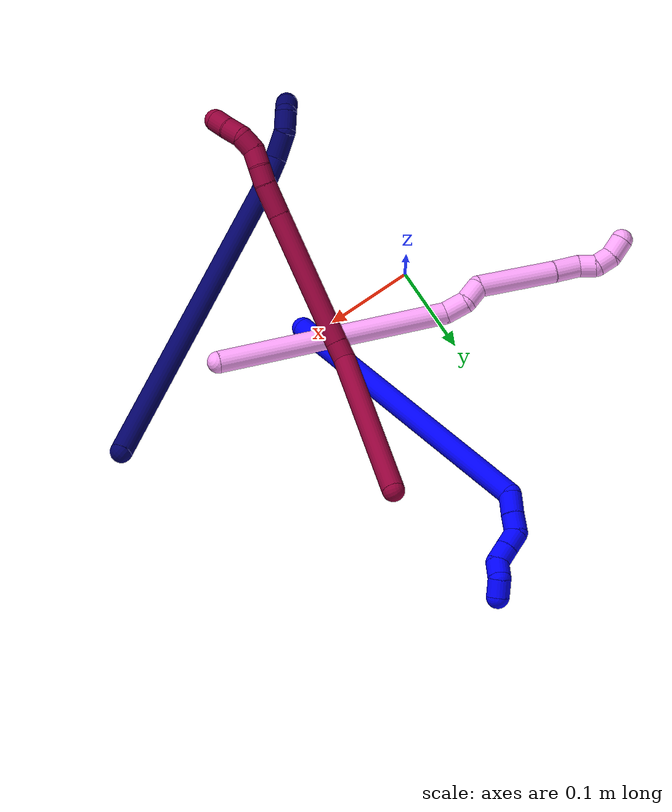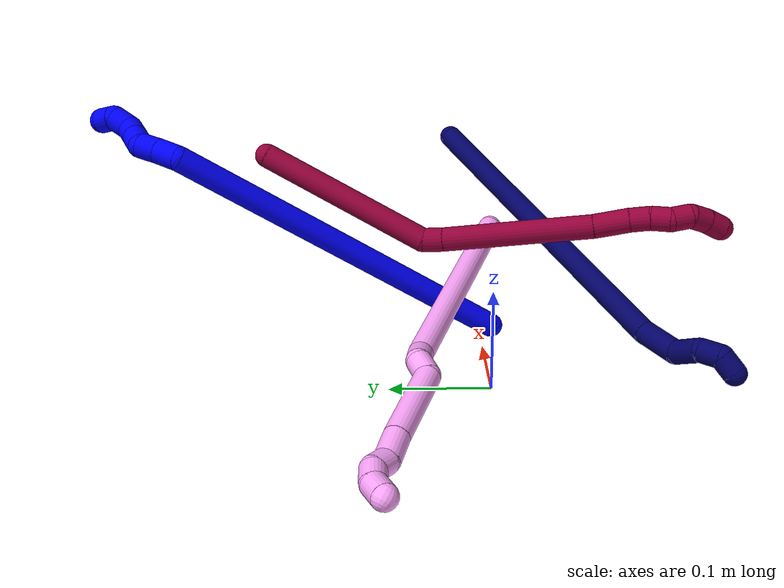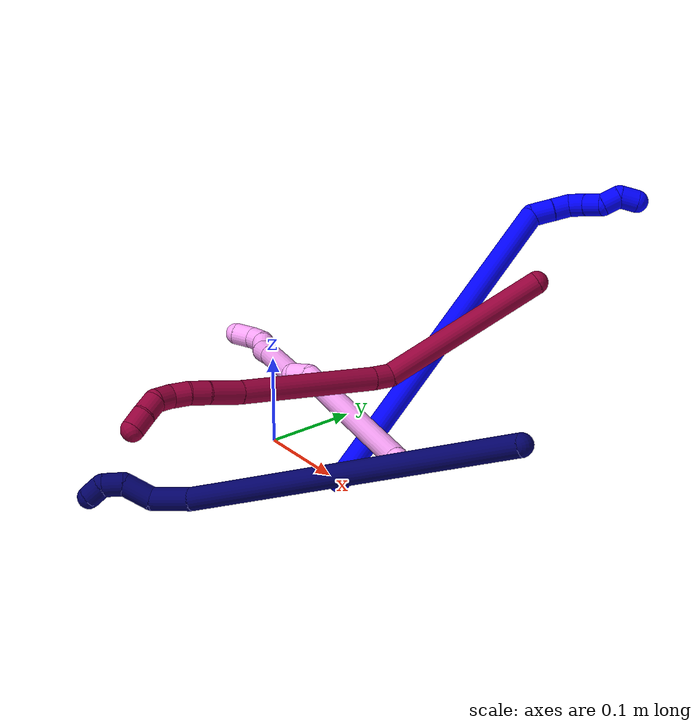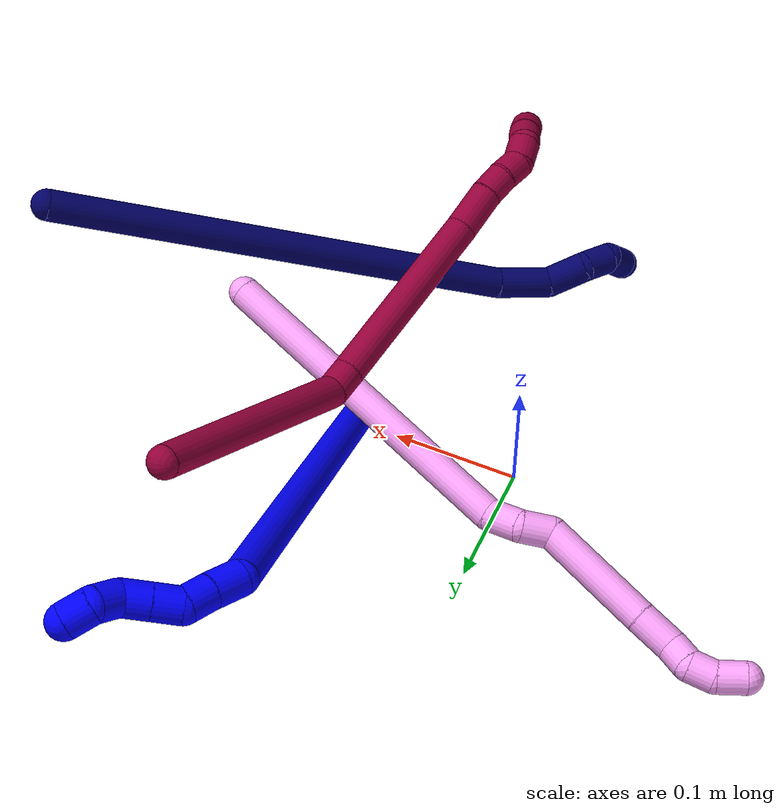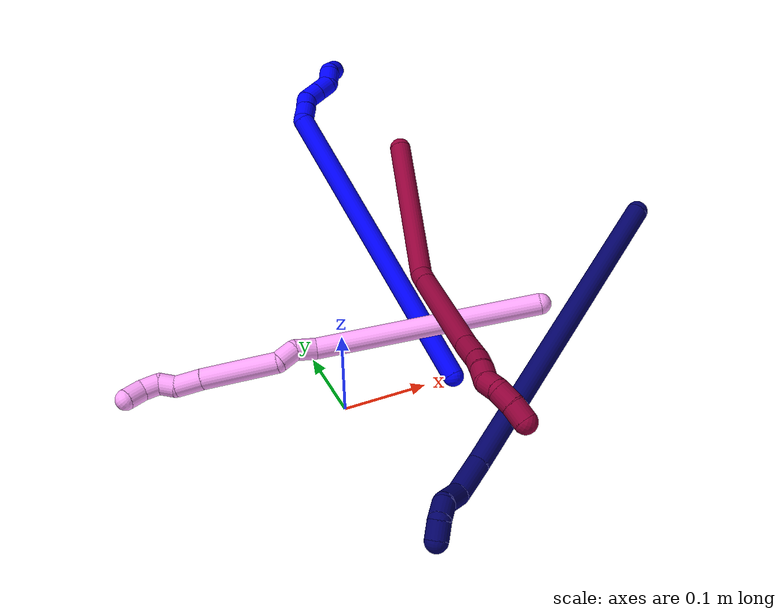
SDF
<sdf version="1.7">
 <world name="default">
  <model name="1">
   <static>0</static>
   <link name="1">
    <collision name="collision-cylinder-e_1_1_4">
     <pose>-0.029122 0.071616 0.17114 -0.396321 -0.155703 0.031325</pose>
     <geometry><cylinder><radius>0.0125</radius><length>0.375584</length></cylinder></geometry>
     <surface>
      <friction><ode><mu>1.16</mu><mu2>1.16</mu2><slip1>0</slip1><slip2>0</slip2></ode></friction>
      <contact><ode><kp>1e+06</kp><kd>1</kd><max_vel>0</max_vel><min_depth>0.001</min_depth></ode></contact>
     </surface>
    </collision>
    <visual name="visual-cylinder-e_1_1_4">
     <pose>-0.029122 0.071616 0.17114 -0.396321 -0.155703 0.031325</pose>
     <geometry><cylinder><radius>0.0125</radius><length>0.375584</length></cylinder></geometry>
     <material><ambient>0 0 1 1</ambient></material>
    </visual>
    <collision name="collision-cylinder-e_2_4_5">
     <pose>-0.051872 0.147866 0.35132 -0.473746 0.56021 -0.138666</pose>
     <geometry><cylinder><radius>0.0125</radius><length>0.023983</length></cylinder></geometry>
     <surface>
      <friction><ode><mu>1.16</mu><mu2>1.16</mu2><slip1>0</slip1><slip2>0</slip2></ode></friction>
      <contact><ode><kp>1e+06</kp><kd>1</kd><max_vel>0</max_vel><min_depth>0.001</min_depth></ode></contact>
     </surface>
    </collision>
    <visual name="visual-cylinder-e_2_4_5">
     <pose>-0.051872 0.147866 0.35132 -0.473746 0.56021 -0.138666</pose>
     <geometry><cylinder><radius>0.0125</radius><length>0.023983</length></cylinder></geometry>
     <material><ambient>0 0 1 1</ambient></material>
    </visual>
    <collision name="collision-cylinder-e_3_5_6">
     <pose>-0.040466 0.156999 0.367968 -0.533952 0.517734 -0.144601</pose>
     <geometry><cylinder><radius>0.0125</radius><length>0.020342</length></cylinder></geometry>
     <surface>
      <friction><ode><mu>1.16</mu><mu2>1.16</mu2><slip1>0</slip1><slip2>0</slip2></ode></friction>
      <contact><ode><kp>1e+06</kp><kd>1</kd><max_vel>0</max_vel><min_depth>0.001</min_depth></ode></contact>
     </surface>
    </collision>
    <visual name="visual-cylinder-e_3_5_6">
     <pose>-0.040466 0.156999 0.367968 -0.533952 0.517734 -0.144601</pose>
     <geometry><cylinder><radius>0.0125</radius><length>0.020342</length></cylinder></geometry>
     <material><ambient>0 0 1 1</ambient></material>
    </visual>
    <collision name="collision-cylinder-e_4_6_7">
     <pose>-0.027043 0.160234 0.380883 0.233717 0.994217 0.127213</pose>
     <geometry><cylinder><radius>0.0125</radius><length>0.020013</length></cylinder></geometry>
     <surface>
      <friction><ode><mu>1.16</mu><mu2>1.16</mu2><slip1>0</slip1><slip2>0</slip2></ode></friction>
      <contact><ode><kp>1e+06</kp><kd>1</kd><max_vel>0</max_vel><min_depth>0.001</min_depth></ode></contact>
     </surface>
    </collision>
    <visual name="visual-cylinder-e_4_6_7">
     <pose>-0.027043 0.160234 0.380883 0.233717 0.994217 0.127213</pose>
     <geometry><cylinder><radius>0.0125</radius><length>0.020013</length></cylinder></geometry>
     <material><ambient>0 0 1 1</ambient></material>
    </visual>
    <collision name="collision-cylinder-e_5_7_8">
     <pose>-0.01022 0.157763 0.391497 0.223665 0.99771 0.122215</pose>
     <geometry><cylinder><radius>0.0125</radius><length>0.020076</length></cylinder></geometry>
     <surface>
      <friction><ode><mu>1.16</mu><mu2>1.16</mu2><slip1>0</slip1><slip2>0</slip2></ode></friction>
      <contact><ode><kp>1e+06</kp><kd>1</kd><max_vel>0</max_vel><min_depth>0.001</min_depth></ode></contact>
     </surface>
    </collision>
    <visual name="visual-cylinder-e_5_7_8">
     <pose>-0.01022 0.157763 0.391497 0.223665 0.99771 0.122215</pose>
     <geometry><cylinder><radius>0.0125</radius><length>0.020076</length></cylinder></geometry>
     <material><ambient>0 0 1 1</ambient></material>
    </visual>
    <collision name="collision-cylinder-e_6_8_9">
     <pose>0.002382 0.158829 0.405605 -0.252726 0.429925 -0.05546</pose>
     <geometry><cylinder><radius>0.0125</radius><length>0.02</length></cylinder></geometry>
     <surface>
      <friction><ode><mu>1.16</mu><mu2>1.16</mu2><slip1>0</slip1><slip2>0</slip2></ode></friction>
      <contact><ode><kp>1e+06</kp><kd>1</kd><max_vel>0</max_vel><min_depth>0.001</min_depth></ode></contact>
     </surface>
    </collision>
    <visual name="visual-cylinder-e_6_8_9">
     <pose>0.002382 0.158829 0.405605 -0.252726 0.429925 -0.05546</pose>
     <geometry><cylinder><radius>0.0125</radius><length>0.02</length></cylinder></geometry>
     <material><ambient>0 0 1 1</ambient></material>
    </visual>
    <collision name="collision-cylinder-e_7_9_2">
     <pose>0.014505 0.166168 0.417732 -0.989965 0.919797 -0.522532</pose>
     <geometry><cylinder><radius>0.0125</radius><length>0.020001</length></cylinder></geometry>
     <surface>
      <friction><ode><mu>1.16</mu><mu2>1.16</mu2><slip1>0</slip1><slip2>0</slip2></ode></friction>
      <contact><ode><kp>1e+06</kp><kd>1</kd><max_vel>0</max_vel><min_depth>0.001</min_depth></ode></contact>
     </surface>
    </collision>
    <visual name="visual-cylinder-e_7_9_2">
     <pose>0.014505 0.166168 0.417732 -0.989965 0.919797 -0.522532</pose>
     <geometry><cylinder><radius>0.0125</radius><length>0.020001</length></cylinder></geometry>
     <material><ambient>0 0 1 1</ambient></material>
    </visual>
    <collision name="collision-sphere-2">
     <pose>0.02246 0.171234 0.421057 0 -0 0</pose>
     <geometry><sphere><radius>0.0125</radius></sphere></geometry>
     <surface>
      <friction><ode><mu>1.16</mu><mu2>1.16</mu2><slip1>0</slip1><slip2>0</slip2></ode></friction>
      <contact><ode><kp>1e+06</kp><kd>1</kd><max_vel>0</max_vel><min_depth>0.001</min_depth></ode></contact>
     </surface>
    </collision>
    <visual name="visual-sphere-2">
     <pose>0.02246 0.171234 0.421057 0 -0 0</pose>
     <geometry><sphere><radius>0.0125</radius></sphere></geometry>
     <material><ambient>0 0 1 1</ambient></material>
    </visual>
    <collision name="collision-sphere-9">
     <pose>0.00655 0.161102 0.414407 0 -0 0</pose>
     <geometry><sphere><radius>0.0125</radius></sphere></geometry>
     <surface>
      <friction><ode><mu>1.16</mu><mu2>1.16</mu2><slip1>0</slip1><slip2>0</slip2></ode></friction>
      <contact><ode><kp>1e+06</kp><kd>1</kd><max_vel>0</max_vel><min_depth>0.001</min_depth></ode></contact>
     </surface>
    </collision>
    <visual name="visual-sphere-9">
     <pose>0.00655 0.161102 0.414407 0 -0 0</pose>
     <geometry><sphere><radius>0.0125</radius></sphere></geometry>
     <material><ambient>0 0 1 1</ambient></material>
    </visual>
    <collision name="collision-sphere-4">
     <pose>-0.058244 0.143232 0.34228 0 -0 0</pose>
     <geometry><sphere><radius>0.0125</radius></sphere></geometry>
     <surface>
      <friction><ode><mu>1.16</mu><mu2>1.16</mu2><slip1>0</slip1><slip2>0</slip2></ode></friction>
      <contact><ode><kp>1e+06</kp><kd>1</kd><max_vel>0</max_vel><min_depth>0.001</min_depth></ode></contact>
     </surface>
    </collision>
    <visual name="visual-sphere-4">
     <pose>-0.058244 0.143232 0.34228 0 -0 0</pose>
     <geometry><sphere><radius>0.0125</radius></sphere></geometry>
     <material><ambient>0 0 1 1</ambient></material>
    </visual>
    <collision name="collision-sphere-1">
     <geometry><sphere><radius>0.0125</radius></sphere></geometry>
     <surface>
      <friction><ode><mu>1.16</mu><mu2>1.16</mu2><slip1>0</slip1><slip2>0</slip2></ode></friction>
      <contact><ode><kp>1e+06</kp><kd>1</kd><max_vel>0</max_vel><min_depth>0.001</min_depth></ode></contact>
     </surface>
    </collision>
    <visual name="visual-sphere-1">
     <geometry><sphere><radius>0.0125</radius></sphere></geometry>
     <material><ambient>0 0 1 1</ambient></material>
    </visual>
    <collision name="collision-sphere-8">
     <pose>-0.001786 0.156556 0.396804 0 -0 0</pose>
     <geometry><sphere><radius>0.0125</radius></sphere></geometry>
     <surface>
      <friction><ode><mu>1.16</mu><mu2>1.16</mu2><slip1>0</slip1><slip2>0</slip2></ode></friction>
      <contact><ode><kp>1e+06</kp><kd>1</kd><max_vel>0</max_vel><min_depth>0.001</min_depth></ode></contact>
     </surface>
    </collision>
    <visual name="visual-sphere-8">
     <pose>-0.001786 0.156556 0.396804 0 -0 0</pose>
     <geometry><sphere><radius>0.0125</radius></sphere></geometry>
     <material><ambient>0 0 1 1</ambient></material>
    </visual>
    <collision name="collision-sphere-5">
     <pose>-0.0455 0.152501 0.36036 0 -0 0</pose>
     <geometry><sphere><radius>0.0125</radius></sphere></geometry>
     <surface>
      <friction><ode><mu>1.16</mu><mu2>1.16</mu2><slip1>0</slip1><slip2>0</slip2></ode></friction>
      <contact><ode><kp>1e+06</kp><kd>1</kd><max_vel>0</max_vel><min_depth>0.001</min_depth></ode></contact>
     </surface>
    </collision>
    <visual name="visual-sphere-5">
     <pose>-0.0455 0.152501 0.36036 0 -0 0</pose>
     <geometry><sphere><radius>0.0125</radius></sphere></geometry>
     <material><ambient>0 0 1 1</ambient></material>
    </visual>
    <collision name="collision-sphere-6">
     <pose>-0.035432 0.161497 0.375576 0 -0 0</pose>
     <geometry><sphere><radius>0.0125</radius></sphere></geometry>
     <surface>
      <friction><ode><mu>1.16</mu><mu2>1.16</mu2><slip1>0</slip1><slip2>0</slip2></ode></friction>
      <contact><ode><kp>1e+06</kp><kd>1</kd><max_vel>0</max_vel><min_depth>0.001</min_depth></ode></contact>
     </surface>
    </collision>
    <visual name="visual-sphere-6">
     <pose>-0.035432 0.161497 0.375576 0 -0 0</pose>
     <geometry><sphere><radius>0.0125</radius></sphere></geometry>
     <material><ambient>0 0 1 1</ambient></material>
    </visual>
    <collision name="collision-sphere-7">
     <pose>-0.018654 0.15897 0.386189 0 -0 0</pose>
     <geometry><sphere><radius>0.0125</radius></sphere></geometry>
     <surface>
      <friction><ode><mu>1.16</mu><mu2>1.16</mu2><slip1>0</slip1><slip2>0</slip2></ode></friction>
      <contact><ode><kp>1e+06</kp><kd>1</kd><max_vel>0</max_vel><min_depth>0.001</min_depth></ode></contact>
     </surface>
    </collision>
    <visual name="visual-sphere-7">
     <pose>-0.018654 0.15897 0.386189 0 -0 0</pose>
     <geometry><sphere><radius>0.0125</radius></sphere></geometry>
     <material><ambient>0 0 1 1</ambient></material>
    </visual>
    <inertial>
     <pose>-0.026827 0.093024 0.224276 0 -0 0</pose>
     <mass>0.5</mass>
     <inertia>
      <ixx>0.004519</ixx>
      <ixy>0</ixy>
      <ixz>0</ixz>
      <iyy>0.004251</iyy>
      <iyz>0</iyz>
      <izz>-0.000978</izz>
     </inertia>
    </inertial>
   </link>
   <pose>0.131621 -0.011443 0.011493 -0.62536 0.317059 0.197017</pose>
  </model>
  <model name="4">
   <static>0</static>
   <link name="4">
    <collision name="collision-cylinder-e_1_1_4">
     <pose>-0.06249 -0.062116 0.099054 0.560106 -0.490847 -0.143829</pose>
     <geometry><cylinder><radius>0.0125</radius><length>0.265142</length></cylinder></geometry>
     <surface>
      <friction><ode><mu>1.16</mu><mu2>1.16</mu2><slip1>0</slip1><slip2>0</slip2></ode></friction>
      <contact><ode><kp>1e+06</kp><kd>1</kd><max_vel>0</max_vel><min_depth>0.001</min_depth></ode></contact>
     </surface>
    </collision>
    <visual name="visual-cylinder-e_1_1_4">
     <pose>-0.06249 -0.062116 0.099054 0.560106 -0.490847 -0.143829</pose>
     <geometry><cylinder><radius>0.0125</radius><length>0.265142</length></cylinder></geometry>
     <material><ambient>1 0.65098 0.996078 1</ambient></material>
    </visual>
    <collision name="collision-cylinder-e_2_4_5">
     <pose>-0.133935 -0.13194 0.203846 0.930813 -0.750096 -0.39038</pose>
     <geometry><cylinder><radius>0.0125</radius><length>0.026268</length></cylinder></geometry>
     <surface>
      <friction><ode><mu>1.16</mu><mu2>1.16</mu2><slip1>0</slip1><slip2>0</slip2></ode></friction>
      <contact><ode><kp>1e+06</kp><kd>1</kd><max_vel>0</max_vel><min_depth>0.001</min_depth></ode></contact>
     </surface>
    </collision>
    <visual name="visual-cylinder-e_2_4_5">
     <pose>-0.133935 -0.13194 0.203846 0.930813 -0.750096 -0.39038</pose>
     <geometry><cylinder><radius>0.0125</radius><length>0.026268</length></cylinder></geometry>
     <material><ambient>1 0.65098 0.996078 1</ambient></material>
    </visual>
    <collision name="collision-cylinder-e_3_5_6">
     <pose>-0.153589 -0.140488 0.215025 0.153302 -1.09568 -0.09365</pose>
     <geometry><cylinder><radius>0.0125</radius><length>0.024068</length></cylinder></geometry>
     <surface>
      <friction><ode><mu>1.16</mu><mu2>1.16</mu2><slip1>0</slip1><slip2>0</slip2></ode></friction>
      <contact><ode><kp>1e+06</kp><kd>1</kd><max_vel>0</max_vel><min_depth>0.001</min_depth></ode></contact>
     </surface>
    </collision>
    <visual name="visual-cylinder-e_3_5_6">
     <pose>-0.153589 -0.140488 0.215025 0.153302 -1.09568 -0.09365</pose>
     <geometry><cylinder><radius>0.0125</radius><length>0.024068</length></cylinder></geometry>
     <material><ambient>1 0.65098 0.996078 1</ambient></material>
    </visual>
    <collision name="collision-cylinder-e_4_6_7">
     <pose>-0.18483 -0.161421 0.255197 0.524457 -0.473109 -0.12923</pose>
     <geometry><cylinder><radius>0.0125</radius><length>0.090152</length></cylinder></geometry>
     <surface>
      <friction><ode><mu>1.16</mu><mu2>1.16</mu2><slip1>0</slip1><slip2>0</slip2></ode></friction>
      <contact><ode><kp>1e+06</kp><kd>1</kd><max_vel>0</max_vel><min_depth>0.001</min_depth></ode></contact>
     </surface>
    </collision>
    <visual name="visual-cylinder-e_4_6_7">
     <pose>-0.18483 -0.161421 0.255197 0.524457 -0.473109 -0.12923</pose>
     <geometry><cylinder><radius>0.0125</radius><length>0.090152</length></cylinder></geometry>
     <material><ambient>1 0.65098 0.996078 1</ambient></material>
    </visual>
    <collision name="collision-cylinder-e_5_7_8">
     <pose>-0.21294 -0.187582 0.302084 0.463063 -0.50835 -0.122345</pose>
     <geometry><cylinder><radius>0.0125</radius><length>0.031106</length></cylinder></geometry>
     <surface>
      <friction><ode><mu>1.16</mu><mu2>1.16</mu2><slip1>0</slip1><slip2>0</slip2></ode></friction>
      <contact><ode><kp>1e+06</kp><kd>1</kd><max_vel>0</max_vel><min_depth>0.001</min_depth></ode></contact>
     </surface>
    </collision>
    <visual name="visual-cylinder-e_5_7_8">
     <pose>-0.21294 -0.187582 0.302084 0.463063 -0.50835 -0.122345</pose>
     <geometry><cylinder><radius>0.0125</radius><length>0.031106</length></cylinder></geometry>
     <material><ambient>1 0.65098 0.996078 1</ambient></material>
    </visual>
    <collision name="collision-cylinder-e_6_8_9">
     <pose>-0.223083 -0.20111 0.320557 0.868079 -0.257395 -0.119827</pose>
     <geometry><cylinder><radius>0.0125</radius><length>0.020214</length></cylinder></geometry>
     <surface>
      <friction><ode><mu>1.16</mu><mu2>1.16</mu2><slip1>0</slip1><slip2>0</slip2></ode></friction>
      <contact><ode><kp>1e+06</kp><kd>1</kd><max_vel>0</max_vel><min_depth>0.001</min_depth></ode></contact>
     </surface>
    </collision>
    <visual name="visual-cylinder-e_6_8_9">
     <pose>-0.223083 -0.20111 0.320557 0.868079 -0.257395 -0.119827</pose>
     <geometry><cylinder><radius>0.0125</radius><length>0.020214</length></cylinder></geometry>
     <material><ambient>1 0.65098 0.996078 1</ambient></material>
    </visual>
    <collision name="collision-cylinder-e_7_9_10">
     <pose>-0.233175 -0.211961 0.332786 0.521039 -0.834341 -0.235195</pose>
     <geometry><cylinder><radius>0.0125</radius><length>0.020298</length></cylinder></geometry>
     <surface>
      <friction><ode><mu>1.16</mu><mu2>1.16</mu2><slip1>0</slip1><slip2>0</slip2></ode></friction>
      <contact><ode><kp>1e+06</kp><kd>1</kd><max_vel>0</max_vel><min_depth>0.001</min_depth></ode></contact>
     </surface>
    </collision>
    <visual name="visual-cylinder-e_7_9_10">
     <pose>-0.233175 -0.211961 0.332786 0.521039 -0.834341 -0.235195</pose>
     <geometry><cylinder><radius>0.0125</radius><length>0.020298</length></cylinder></geometry>
     <material><ambient>1 0.65098 0.996078 1</ambient></material>
    </visual>
    <collision name="collision-cylinder-e_8_10_2">
     <pose>-0.251466 -0.217353 0.341755 0.578994 -1.24394 -0.420751</pose>
     <geometry><cylinder><radius>0.0125</radius><length>0.02275</length></cylinder></geometry>
     <surface>
      <friction><ode><mu>1.16</mu><mu2>1.16</mu2><slip1>0</slip1><slip2>0</slip2></ode></friction>
      <contact><ode><kp>1e+06</kp><kd>1</kd><max_vel>0</max_vel><min_depth>0.001</min_depth></ode></contact>
     </surface>
    </collision>
    <visual name="visual-cylinder-e_8_10_2">
     <pose>-0.251466 -0.217353 0.341755 0.578994 -1.24394 -0.420751</pose>
     <geometry><cylinder><radius>0.0125</radius><length>0.02275</length></cylinder></geometry>
     <material><ambient>1 0.65098 0.996078 1</ambient></material>
    </visual>
    <collision name="collision-sphere-2">
     <pose>-0.262239 -0.219352 0.344812 0 -0 0</pose>
     <geometry><sphere><radius>0.0125</radius></sphere></geometry>
     <surface>
      <friction><ode><mu>1.16</mu><mu2>1.16</mu2><slip1>0</slip1><slip2>0</slip2></ode></friction>
      <contact><ode><kp>1e+06</kp><kd>1</kd><max_vel>0</max_vel><min_depth>0.001</min_depth></ode></contact>
     </surface>
    </collision>
    <visual name="visual-sphere-2">
     <pose>-0.262239 -0.219352 0.344812 0 -0 0</pose>
     <geometry><sphere><radius>0.0125</radius></sphere></geometry>
     <material><ambient>1 0.65098 0.996078 1</ambient></material>
    </visual>
    <collision name="collision-sphere-10">
     <pose>-0.240694 -0.215355 0.338698 0 -0 0</pose>
     <geometry><sphere><radius>0.0125</radius></sphere></geometry>
     <surface>
      <friction><ode><mu>1.16</mu><mu2>1.16</mu2><slip1>0</slip1><slip2>0</slip2></ode></friction>
      <contact><ode><kp>1e+06</kp><kd>1</kd><max_vel>0</max_vel><min_depth>0.001</min_depth></ode></contact>
     </surface>
    </collision>
    <visual name="visual-sphere-10">
     <pose>-0.240694 -0.215355 0.338698 0 -0 0</pose>
     <geometry><sphere><radius>0.0125</radius></sphere></geometry>
     <material><ambient>1 0.65098 0.996078 1</ambient></material>
    </visual>
    <collision name="collision-sphere-9">
     <pose>-0.225655 -0.208568 0.326874 0 -0 0</pose>
     <geometry><sphere><radius>0.0125</radius></sphere></geometry>
     <surface>
      <friction><ode><mu>1.16</mu><mu2>1.16</mu2><slip1>0</slip1><slip2>0</slip2></ode></friction>
      <contact><ode><kp>1e+06</kp><kd>1</kd><max_vel>0</max_vel><min_depth>0.001</min_depth></ode></contact>
     </surface>
    </collision>
    <visual name="visual-sphere-9">
     <pose>-0.225655 -0.208568 0.326874 0 -0 0</pose>
     <geometry><sphere><radius>0.0125</radius></sphere></geometry>
     <material><ambient>1 0.65098 0.996078 1</ambient></material>
    </visual>
    <collision name="collision-sphere-4">
     <pose>-0.124981 -0.124233 0.198107 0 -0 0</pose>
     <geometry><sphere><radius>0.0125</radius></sphere></geometry>
     <surface>
      <friction><ode><mu>1.16</mu><mu2>1.16</mu2><slip1>0</slip1><slip2>0</slip2></ode></friction>
      <contact><ode><kp>1e+06</kp><kd>1</kd><max_vel>0</max_vel><min_depth>0.001</min_depth></ode></contact>
     </surface>
    </collision>
    <visual name="visual-sphere-4">
     <pose>-0.124981 -0.124233 0.198107 0 -0 0</pose>
     <geometry><sphere><radius>0.0125</radius></sphere></geometry>
     <material><ambient>1 0.65098 0.996078 1</ambient></material>
    </visual>
    <collision name="collision-sphere-1">
     <geometry><sphere><radius>0.0125</radius></sphere></geometry>
     <surface>
      <friction><ode><mu>1.16</mu><mu2>1.16</mu2><slip1>0</slip1><slip2>0</slip2></ode></friction>
      <contact><ode><kp>1e+06</kp><kd>1</kd><max_vel>0</max_vel><min_depth>0.001</min_depth></ode></contact>
     </surface>
    </collision>
    <visual name="visual-sphere-1">
     <geometry><sphere><radius>0.0125</radius></sphere></geometry>
     <material><ambient>1 0.65098 0.996078 1</ambient></material>
    </visual>
    <collision name="collision-sphere-8">
     <pose>-0.22051 -0.193651 0.31424 0 -0 0</pose>
     <geometry><sphere><radius>0.0125</radius></sphere></geometry>
     <surface>
      <friction><ode><mu>1.16</mu><mu2>1.16</mu2><slip1>0</slip1><slip2>0</slip2></ode></friction>
      <contact><ode><kp>1e+06</kp><kd>1</kd><max_vel>0</max_vel><min_depth>0.001</min_depth></ode></contact>
     </surface>
    </collision>
    <visual name="visual-sphere-8">
     <pose>-0.22051 -0.193651 0.31424 0 -0 0</pose>
     <geometry><sphere><radius>0.0125</radius></sphere></geometry>
     <material><ambient>1 0.65098 0.996078 1</ambient></material>
    </visual>
    <collision name="collision-sphere-5">
     <pose>-0.142888 -0.139648 0.209584 0 -0 0</pose>
     <geometry><sphere><radius>0.0125</radius></sphere></geometry>
     <surface>
      <friction><ode><mu>1.16</mu><mu2>1.16</mu2><slip1>0</slip1><slip2>0</slip2></ode></friction>
      <contact><ode><kp>1e+06</kp><kd>1</kd><max_vel>0</max_vel><min_depth>0.001</min_depth></ode></contact>
     </surface>
    </collision>
    <visual name="visual-sphere-5">
     <pose>-0.142888 -0.139648 0.209584 0 -0 0</pose>
     <geometry><sphere><radius>0.0125</radius></sphere></geometry>
     <material><ambient>1 0.65098 0.996078 1</ambient></material>
    </visual>
    <collision name="collision-sphere-6">
     <pose>-0.164291 -0.141329 0.220465 0 -0 0</pose>
     <geometry><sphere><radius>0.0125</radius></sphere></geometry>
     <surface>
      <friction><ode><mu>1.16</mu><mu2>1.16</mu2><slip1>0</slip1><slip2>0</slip2></ode></friction>
      <contact><ode><kp>1e+06</kp><kd>1</kd><max_vel>0</max_vel><min_depth>0.001</min_depth></ode></contact>
     </surface>
    </collision>
    <visual name="visual-sphere-6">
     <pose>-0.164291 -0.141329 0.220465 0 -0 0</pose>
     <geometry><sphere><radius>0.0125</radius></sphere></geometry>
     <material><ambient>1 0.65098 0.996078 1</ambient></material>
    </visual>
    <collision name="collision-sphere-7">
     <pose>-0.205369 -0.181513 0.289929 0 -0 0</pose>
     <geometry><sphere><radius>0.0125</radius></sphere></geometry>
     <surface>
      <friction><ode><mu>1.16</mu><mu2>1.16</mu2><slip1>0</slip1><slip2>0</slip2></ode></friction>
      <contact><ode><kp>1e+06</kp><kd>1</kd><max_vel>0</max_vel><min_depth>0.001</min_depth></ode></contact>
     </surface>
    </collision>
    <visual name="visual-sphere-7">
     <pose>-0.205369 -0.181513 0.289929 0 -0 0</pose>
     <geometry><sphere><radius>0.0125</radius></sphere></geometry>
     <material><ambient>1 0.65098 0.996078 1</ambient></material>
    </visual>
    <inertial>
     <pose>-0.124067 -0.114034 0.180413 0 -0 0</pose>
     <mass>0.5</mass>
     <inertia>
      <ixx>0.001203</ixx>
      <ixy>0</ixy>
      <ixz>0</ixz>
      <iyy>0.001212</iyy>
      <iyz>0</iyz>
      <izz>0.001569</izz>
     </inertia>
    </inertial>
   </link>
   <pose>0.239311 -0.019106 0.086683 -2.37 0.072895 0.709573</pose>
  </model>
  <model name="7">
   <static>0</static>
   <link name="7">
    <collision name="collision-cylinder-e_1_1_4">
     <pose>-0.158007 -0.099102 0.033779 1.24229 -0.985589 -0.733777</pose>
     <geometry><cylinder><radius>0.0125</radius><length>0.379097</length></cylinder></geometry>
     <surface>
      <friction><ode><mu>1.16</mu><mu2>1.16</mu2><slip1>0</slip1><slip2>0</slip2></ode></friction>
      <contact><ode><kp>1e+06</kp><kd>1</kd><max_vel>0</max_vel><min_depth>0.001</min_depth></ode></contact>
     </surface>
    </collision>
    <visual name="visual-cylinder-e_1_1_4">
     <pose>-0.158007 -0.099102 0.033779 1.24229 -0.985589 -0.733777</pose>
     <geometry><cylinder><radius>0.0125</radius><length>0.379097</length></cylinder></geometry>
     <material><ambient>0.003922 0 0.403922 1</ambient></material>
    </visual>
    <collision name="collision-cylinder-e_2_4_5">
     <pose>-0.335773 -0.206386 0.073943 0.908112 -1.0872 -0.573646</pose>
     <geometry><cylinder><radius>0.0125</radius><length>0.044636</length></cylinder></geometry>
     <surface>
      <friction><ode><mu>1.16</mu><mu2>1.16</mu2><slip1>0</slip1><slip2>0</slip2></ode></friction>
      <contact><ode><kp>1e+06</kp><kd>1</kd><max_vel>0</max_vel><min_depth>0.001</min_depth></ode></contact>
     </surface>
    </collision>
    <visual name="visual-cylinder-e_2_4_5">
     <pose>-0.335773 -0.206386 0.073943 0.908112 -1.0872 -0.573646</pose>
     <geometry><cylinder><radius>0.0125</radius><length>0.044636</length></cylinder></geometry>
     <material><ambient>0.003922 0 0.403922 1</ambient></material>
    </visual>
    <collision name="collision-cylinder-e_3_5_6">
     <pose>-0.370419 -0.211556 0.087101 -0.418224 -1.10882 0.261305</pose>
     <geometry><cylinder><radius>0.0125</radius><length>0.033261</length></cylinder></geometry>
     <surface>
      <friction><ode><mu>1.16</mu><mu2>1.16</mu2><slip1>0</slip1><slip2>0</slip2></ode></friction>
      <contact><ode><kp>1e+06</kp><kd>1</kd><max_vel>0</max_vel><min_depth>0.001</min_depth></ode></contact>
     </surface>
    </collision>
    <visual name="visual-cylinder-e_3_5_6">
     <pose>-0.370419 -0.211556 0.087101 -0.418224 -1.10882 0.261305</pose>
     <geometry><cylinder><radius>0.0125</radius><length>0.033261</length></cylinder></geometry>
     <material><ambient>0.003922 0 0.403922 1</ambient></material>
    </visual>
    <collision name="collision-cylinder-e_4_6_7">
     <pose>-0.393812 -0.211964 0.100487 0.4772 -0.851852 -0.21982</pose>
     <geometry><cylinder><radius>0.0125</radius><length>0.022607</length></cylinder></geometry>
     <surface>
      <friction><ode><mu>1.16</mu><mu2>1.16</mu2><slip1>0</slip1><slip2>0</slip2></ode></friction>
      <contact><ode><kp>1e+06</kp><kd>1</kd><max_vel>0</max_vel><min_depth>0.001</min_depth></ode></contact>
     </surface>
    </collision>
    <visual name="visual-cylinder-e_4_6_7">
     <pose>-0.393812 -0.211964 0.100487 0.4772 -0.851852 -0.21982</pose>
     <geometry><cylinder><radius>0.0125</radius><length>0.022607</length></cylinder></geometry>
     <material><ambient>0.003922 0 0.403922 1</ambient></material>
    </visual>
    <collision name="collision-cylinder-e_5_7_2">
     <pose>-0.406957 -0.224011 0.109941 1.25272 -0.472202 -0.344702</pose>
     <geometry><cylinder><radius>0.0125</radius><length>0.020399</length></cylinder></geometry>
     <surface>
      <friction><ode><mu>1.16</mu><mu2>1.16</mu2><slip1>0</slip1><slip2>0</slip2></ode></friction>
      <contact><ode><kp>1e+06</kp><kd>1</kd><max_vel>0</max_vel><min_depth>0.001</min_depth></ode></contact>
     </surface>
    </collision>
    <visual name="visual-cylinder-e_5_7_2">
     <pose>-0.406957 -0.224011 0.109941 1.25272 -0.472202 -0.344702</pose>
     <geometry><cylinder><radius>0.0125</radius><length>0.020399</length></cylinder></geometry>
     <material><ambient>0.003922 0 0.403922 1</ambient></material>
    </visual>
    <collision name="collision-sphere-2">
     <pose>-0.411596 -0.232639 0.112781 0 -0 0</pose>
     <geometry><sphere><radius>0.0125</radius></sphere></geometry>
     <surface>
      <friction><ode><mu>1.16</mu><mu2>1.16</mu2><slip1>0</slip1><slip2>0</slip2></ode></friction>
      <contact><ode><kp>1e+06</kp><kd>1</kd><max_vel>0</max_vel><min_depth>0.001</min_depth></ode></contact>
     </surface>
    </collision>
    <visual name="visual-sphere-2">
     <pose>-0.411596 -0.232639 0.112781 0 -0 0</pose>
     <geometry><sphere><radius>0.0125</radius></sphere></geometry>
     <material><ambient>0.003922 0 0.403922 1</ambient></material>
    </visual>
    <collision name="collision-sphere-7">
     <pose>-0.402318 -0.215384 0.1071 0 -0 0</pose>
     <geometry><sphere><radius>0.0125</radius></sphere></geometry>
     <surface>
      <friction><ode><mu>1.16</mu><mu2>1.16</mu2><slip1>0</slip1><slip2>0</slip2></ode></friction>
      <contact><ode><kp>1e+06</kp><kd>1</kd><max_vel>0</max_vel><min_depth>0.001</min_depth></ode></contact>
     </surface>
    </collision>
    <visual name="visual-sphere-7">
     <pose>-0.402318 -0.215384 0.1071 0 -0 0</pose>
     <geometry><sphere><radius>0.0125</radius></sphere></geometry>
     <material><ambient>0.003922 0 0.403922 1</ambient></material>
    </visual>
    <collision name="collision-sphere-6">
     <pose>-0.385306 -0.208545 0.093874 0 -0 0</pose>
     <geometry><sphere><radius>0.0125</radius></sphere></geometry>
     <surface>
      <friction><ode><mu>1.16</mu><mu2>1.16</mu2><slip1>0</slip1><slip2>0</slip2></ode></friction>
      <contact><ode><kp>1e+06</kp><kd>1</kd><max_vel>0</max_vel><min_depth>0.001</min_depth></ode></contact>
     </surface>
    </collision>
    <visual name="visual-sphere-6">
     <pose>-0.385306 -0.208545 0.093874 0 -0 0</pose>
     <geometry><sphere><radius>0.0125</radius></sphere></geometry>
     <material><ambient>0.003922 0 0.403922 1</ambient></material>
    </visual>
    <collision name="collision-sphere-5">
     <pose>-0.355532 -0.214566 0.080327 0 -0 0</pose>
     <geometry><sphere><radius>0.0125</radius></sphere></geometry>
     <surface>
      <friction><ode><mu>1.16</mu><mu2>1.16</mu2><slip1>0</slip1><slip2>0</slip2></ode></friction>
      <contact><ode><kp>1e+06</kp><kd>1</kd><max_vel>0</max_vel><min_depth>0.001</min_depth></ode></contact>
     </surface>
    </collision>
    <visual name="visual-sphere-5">
     <pose>-0.355532 -0.214566 0.080327 0 -0 0</pose>
     <geometry><sphere><radius>0.0125</radius></sphere></geometry>
     <material><ambient>0.003922 0 0.403922 1</ambient></material>
    </visual>
    <collision name="collision-sphere-1">
     <geometry><sphere><radius>0.0125</radius></sphere></geometry>
     <surface>
      <friction><ode><mu>1.16</mu><mu2>1.16</mu2><slip1>0</slip1><slip2>0</slip2></ode></friction>
      <contact><ode><kp>1e+06</kp><kd>1</kd><max_vel>0</max_vel><min_depth>0.001</min_depth></ode></contact>
     </surface>
    </collision>
    <visual name="visual-sphere-1">
     <geometry><sphere><radius>0.0125</radius></sphere></geometry>
     <material><ambient>0.003922 0 0.403922 1</ambient></material>
    </visual>
    <collision name="collision-sphere-4">
     <pose>-0.316014 -0.198205 0.067558 0 -0 0</pose>
     <geometry><sphere><radius>0.0125</radius></sphere></geometry>
     <surface>
      <friction><ode><mu>1.16</mu><mu2>1.16</mu2><slip1>0</slip1><slip2>0</slip2></ode></friction>
      <contact><ode><kp>1e+06</kp><kd>1</kd><max_vel>0</max_vel><min_depth>0.001</min_depth></ode></contact>
     </surface>
    </collision>
    <visual name="visual-sphere-4">
     <pose>-0.316014 -0.198205 0.067558 0 -0 0</pose>
     <geometry><sphere><radius>0.0125</radius></sphere></geometry>
     <material><ambient>0.003922 0 0.403922 1</ambient></material>
    </visual>
    <inertial>
     <pose>-0.208825 -0.12636 0.047035 0 -0 0</pose>
     <mass>0.5</mass>
     <inertia>
      <ixx>0.000157</ixx>
      <ixy>0</ixy>
      <ixz>0</ixz>
      <iyy>0.001807</iyy>
      <iyz>0</iyz>
      <izz>0.006206</izz>
     </inertia>
    </inertial>
   </link>
   <pose>0.387893 0.016241 0.154473 1.34634 0.138432 0.22511</pose>
  </model>
  <model name="8">
   <static>0</static>
   <link name="8">
    <collision name="collision-cylinder-e_1_1_4">
     <pose>0.090347 -0.008474 -0.019535 2.73232 1.33933 2.62884</pose>
     <geometry><cylinder><radius>0.0125</radius><length>0.185645</length></cylinder></geometry>
     <surface>
      <friction><ode><mu>1.16</mu><mu2>1.16</mu2><slip1>0</slip1><slip2>0</slip2></ode></friction>
      <contact><ode><kp>1e+06</kp><kd>1</kd><max_vel>0</max_vel><min_depth>0.001</min_depth></ode></contact>
     </surface>
    </collision>
    <visual name="visual-cylinder-e_1_1_4">
     <pose>0.090347 -0.008474 -0.019535 2.73232 1.33933 2.62884</pose>
     <geometry><cylinder><radius>0.0125</radius><length>0.185645</length></cylinder></geometry>
     <material><ambient>0.584314 0 0.227451 1</ambient></material>
    </visual>
    <collision name="collision-cylinder-e_2_4_5">
     <pose>0.190299 -0.012627 -0.040102 -1.80512 1.13758 -1.3614</pose>
     <geometry><cylinder><radius>0.0125</radius><length>0.021163</length></cylinder></geometry>
     <surface>
      <friction><ode><mu>1.16</mu><mu2>1.16</mu2><slip1>0</slip1><slip2>0</slip2></ode></friction>
      <contact><ode><kp>1e+06</kp><kd>1</kd><max_vel>0</max_vel><min_depth>0.001</min_depth></ode></contact>
     </surface>
    </collision>
    <visual name="visual-cylinder-e_2_4_5">
     <pose>0.190299 -0.012627 -0.040102 -1.80512 1.13758 -1.3614</pose>
     <geometry><cylinder><radius>0.0125</radius><length>0.021163</length></cylinder></geometry>
     <material><ambient>0.584314 0 0.227451 1</ambient></material>
    </visual>
    <collision name="collision-cylinder-e_3_5_6">
     <pose>0.268457 0.02714 -0.045084 -1.6818 1.09108 -1.19216</pose>
     <geometry><cylinder><radius>0.0125</radius><length>0.154555</length></cylinder></geometry>
     <surface>
      <friction><ode><mu>1.16</mu><mu2>1.16</mu2><slip1>0</slip1><slip2>0</slip2></ode></friction>
      <contact><ode><kp>1e+06</kp><kd>1</kd><max_vel>0</max_vel><min_depth>0.001</min_depth></ode></contact>
     </surface>
    </collision>
    <visual name="visual-cylinder-e_3_5_6">
     <pose>0.268457 0.02714 -0.045084 -1.6818 1.09108 -1.19216</pose>
     <geometry><cylinder><radius>0.0125</radius><length>0.154555</length></cylinder></geometry>
     <material><ambient>0.584314 0 0.227451 1</ambient></material>
    </visual>
    <collision name="collision-cylinder-e_4_6_7">
     <pose>0.352729 0.072362 -0.049218 -1.58952 1.0143 -1.03027</pose>
     <geometry><cylinder><radius>0.0125</radius><length>0.037021</length></cylinder></geometry>
     <surface>
      <friction><ode><mu>1.16</mu><mu2>1.16</mu2><slip1>0</slip1><slip2>0</slip2></ode></friction>
      <contact><ode><kp>1e+06</kp><kd>1</kd><max_vel>0</max_vel><min_depth>0.001</min_depth></ode></contact>
     </surface>
    </collision>
    <visual name="visual-cylinder-e_4_6_7">
     <pose>0.352729 0.072362 -0.049218 -1.58952 1.0143 -1.03027</pose>
     <geometry><cylinder><radius>0.0125</radius><length>0.037021</length></cylinder></geometry>
     <material><ambient>0.584314 0 0.227451 1</ambient></material>
    </visual>
    <collision name="collision-cylinder-e_5_7_8">
     <pose>0.377745 0.086774 -0.048892 -1.46125 1.10589 -1.0103</pose>
     <geometry><cylinder><radius>0.0125</radius><length>0.020804</length></cylinder></geometry>
     <surface>
      <friction><ode><mu>1.16</mu><mu2>1.16</mu2><slip1>0</slip1><slip2>0</slip2></ode></friction>
      <contact><ode><kp>1e+06</kp><kd>1</kd><max_vel>0</max_vel><min_depth>0.001</min_depth></ode></contact>
     </surface>
    </collision>
    <visual name="visual-cylinder-e_5_7_8">
     <pose>0.377745 0.086774 -0.048892 -1.46125 1.10589 -1.0103</pose>
     <geometry><cylinder><radius>0.0125</radius><length>0.020804</length></cylinder></geometry>
     <material><ambient>0.584314 0 0.227451 1</ambient></material>
    </visual>
    <collision name="collision-cylinder-e_6_8_9">
     <pose>0.396581 0.094417 -0.048501 -1.61051 1.26507 -1.30316</pose>
     <geometry><cylinder><radius>0.0125</radius><length>0.020002</length></cylinder></geometry>
     <surface>
      <friction><ode><mu>1.16</mu><mu2>1.16</mu2><slip1>0</slip1><slip2>0</slip2></ode></friction>
      <contact><ode><kp>1e+06</kp><kd>1</kd><max_vel>0</max_vel><min_depth>0.001</min_depth></ode></contact>
     </surface>
    </collision>
    <visual name="visual-cylinder-e_6_8_9">
     <pose>0.396581 0.094417 -0.048501 -1.61051 1.26507 -1.30316</pose>
     <geometry><cylinder><radius>0.0125</radius><length>0.020002</length></cylinder></geometry>
     <material><ambient>0.584314 0 0.227451 1</ambient></material>
    </visual>
    <collision name="collision-cylinder-e_7_9_10">
     <pose>0.41387 0.10311 -0.051894 -2.09331 0.868538 -1.35231</pose>
     <geometry><cylinder><radius>0.0125</radius><length>0.02031</length></cylinder></geometry>
     <surface>
      <friction><ode><mu>1.16</mu><mu2>1.16</mu2><slip1>0</slip1><slip2>0</slip2></ode></friction>
      <contact><ode><kp>1e+06</kp><kd>1</kd><max_vel>0</max_vel><min_depth>0.001</min_depth></ode></contact>
     </surface>
    </collision>
    <visual name="visual-cylinder-e_7_9_10">
     <pose>0.41387 0.10311 -0.051894 -2.09331 0.868538 -1.35231</pose>
     <geometry><cylinder><radius>0.0125</radius><length>0.02031</length></cylinder></geometry>
     <material><ambient>0.584314 0 0.227451 1</ambient></material>
    </visual>
    <collision name="collision-cylinder-e_8_10_11">
     <pose>0.428943 0.110468 -0.061774 -2.89342 0.821177 -2.58352</pose>
     <geometry><cylinder><radius>0.0125</radius><length>0.020004</length></cylinder></geometry>
     <surface>
      <friction><ode><mu>1.16</mu><mu2>1.16</mu2><slip1>0</slip1><slip2>0</slip2></ode></friction>
      <contact><ode><kp>1e+06</kp><kd>1</kd><max_vel>0</max_vel><min_depth>0.001</min_depth></ode></contact>
     </surface>
    </collision>
    <visual name="visual-cylinder-e_8_10_11">
     <pose>0.428943 0.110468 -0.061774 -2.89342 0.821177 -2.58352</pose>
     <geometry><cylinder><radius>0.0125</radius><length>0.020004</length></cylinder></geometry>
     <material><ambient>0.584314 0 0.227451 1</ambient></material>
    </visual>
    <collision name="collision-cylinder-e_9_11_2">
     <pose>0.444144 0.112379 -0.074927 -3.10533 0.877222 -3.06432</pose>
     <geometry><cylinder><radius>0.0125</radius><length>0.020495</length></cylinder></geometry>
     <surface>
      <friction><ode><mu>1.16</mu><mu2>1.16</mu2><slip1>0</slip1><slip2>0</slip2></ode></friction>
      <contact><ode><kp>1e+06</kp><kd>1</kd><max_vel>0</max_vel><min_depth>0.001</min_depth></ode></contact>
     </surface>
    </collision>
    <visual name="visual-cylinder-e_9_11_2">
     <pose>0.444144 0.112379 -0.074927 -3.10533 0.877222 -3.06432</pose>
     <geometry><cylinder><radius>0.0125</radius><length>0.020495</length></cylinder></geometry>
     <material><ambient>0.584314 0 0.227451 1</ambient></material>
    </visual>
    <collision name="collision-sphere-2">
     <pose>0.452024 0.112617 -0.081474 0 -0 0</pose>
     <geometry><sphere><radius>0.0125</radius></sphere></geometry>
     <surface>
      <friction><ode><mu>1.16</mu><mu2>1.16</mu2><slip1>0</slip1><slip2>0</slip2></ode></friction>
      <contact><ode><kp>1e+06</kp><kd>1</kd><max_vel>0</max_vel><min_depth>0.001</min_depth></ode></contact>
     </surface>
    </collision>
    <visual name="visual-sphere-2">
     <pose>0.452024 0.112617 -0.081474 0 -0 0</pose>
     <geometry><sphere><radius>0.0125</radius></sphere></geometry>
     <material><ambient>0.584314 0 0.227451 1</ambient></material>
    </visual>
    <collision name="collision-sphere-11">
     <pose>0.436264 0.112142 -0.06838 0 -0 0</pose>
     <geometry><sphere><radius>0.0125</radius></sphere></geometry>
     <surface>
      <friction><ode><mu>1.16</mu><mu2>1.16</mu2><slip1>0</slip1><slip2>0</slip2></ode></friction>
      <contact><ode><kp>1e+06</kp><kd>1</kd><max_vel>0</max_vel><min_depth>0.001</min_depth></ode></contact>
     </surface>
    </collision>
    <visual name="visual-sphere-11">
     <pose>0.436264 0.112142 -0.06838 0 -0 0</pose>
     <geometry><sphere><radius>0.0125</radius></sphere></geometry>
     <material><ambient>0.584314 0 0.227451 1</ambient></material>
    </visual>
    <collision name="collision-sphere-10">
     <pose>0.421623 0.108794 -0.055168 0 -0 0</pose>
     <geometry><sphere><radius>0.0125</radius></sphere></geometry>
     <surface>
      <friction><ode><mu>1.16</mu><mu2>1.16</mu2><slip1>0</slip1><slip2>0</slip2></ode></friction>
      <contact><ode><kp>1e+06</kp><kd>1</kd><max_vel>0</max_vel><min_depth>0.001</min_depth></ode></contact>
     </surface>
    </collision>
    <visual name="visual-sphere-10">
     <pose>0.421623 0.108794 -0.055168 0 -0 0</pose>
     <geometry><sphere><radius>0.0125</radius></sphere></geometry>
     <material><ambient>0.584314 0 0.227451 1</ambient></material>
    </visual>
    <collision name="collision-sphere-9">
     <pose>0.406118 0.097425 -0.048621 0 -0 0</pose>
     <geometry><sphere><radius>0.0125</radius></sphere></geometry>
     <surface>
      <friction><ode><mu>1.16</mu><mu2>1.16</mu2><slip1>0</slip1><slip2>0</slip2></ode></friction>
      <contact><ode><kp>1e+06</kp><kd>1</kd><max_vel>0</max_vel><min_depth>0.001</min_depth></ode></contact>
     </surface>
    </collision>
    <visual name="visual-sphere-9">
     <pose>0.406118 0.097425 -0.048621 0 -0 0</pose>
     <geometry><sphere><radius>0.0125</radius></sphere></geometry>
     <material><ambient>0.584314 0 0.227451 1</ambient></material>
    </visual>
    <collision name="collision-sphere-4">
     <pose>0.180694 -0.016948 -0.039071 0 -0 0</pose>
     <geometry><sphere><radius>0.0125</radius></sphere></geometry>
     <surface>
      <friction><ode><mu>1.16</mu><mu2>1.16</mu2><slip1>0</slip1><slip2>0</slip2></ode></friction>
      <contact><ode><kp>1e+06</kp><kd>1</kd><max_vel>0</max_vel><min_depth>0.001</min_depth></ode></contact>
     </surface>
    </collision>
    <visual name="visual-sphere-4">
     <pose>0.180694 -0.016948 -0.039071 0 -0 0</pose>
     <geometry><sphere><radius>0.0125</radius></sphere></geometry>
     <material><ambient>0.584314 0 0.227451 1</ambient></material>
    </visual>
    <collision name="collision-sphere-1">
     <geometry><sphere><radius>0.0125</radius></sphere></geometry>
     <surface>
      <friction><ode><mu>1.16</mu><mu2>1.16</mu2><slip1>0</slip1><slip2>0</slip2></ode></friction>
      <contact><ode><kp>1e+06</kp><kd>1</kd><max_vel>0</max_vel><min_depth>0.001</min_depth></ode></contact>
     </surface>
    </collision>
    <visual name="visual-sphere-1">
     <geometry><sphere><radius>0.0125</radius></sphere></geometry>
     <material><ambient>0.584314 0 0.227451 1</ambient></material>
    </visual>
    <collision name="collision-sphere-8">
     <pose>0.387043 0.09141 -0.048382 0 -0 0</pose>
     <geometry><sphere><radius>0.0125</radius></sphere></geometry>
     <surface>
      <friction><ode><mu>1.16</mu><mu2>1.16</mu2><slip1>0</slip1><slip2>0</slip2></ode></friction>
      <contact><ode><kp>1e+06</kp><kd>1</kd><max_vel>0</max_vel><min_depth>0.001</min_depth></ode></contact>
     </surface>
    </collision>
    <visual name="visual-sphere-8">
     <pose>0.387043 0.09141 -0.048382 0 -0 0</pose>
     <geometry><sphere><radius>0.0125</radius></sphere></geometry>
     <material><ambient>0.584314 0 0.227451 1</ambient></material>
    </visual>
    <collision name="collision-sphere-5">
     <pose>0.199903 -0.008306 -0.041133 0 -0 0</pose>
     <geometry><sphere><radius>0.0125</radius></sphere></geometry>
     <surface>
      <friction><ode><mu>1.16</mu><mu2>1.16</mu2><slip1>0</slip1><slip2>0</slip2></ode></friction>
      <contact><ode><kp>1e+06</kp><kd>1</kd><max_vel>0</max_vel><min_depth>0.001</min_depth></ode></contact>
     </surface>
    </collision>
    <visual name="visual-sphere-5">
     <pose>0.199903 -0.008306 -0.041133 0 -0 0</pose>
     <geometry><sphere><radius>0.0125</radius></sphere></geometry>
     <material><ambient>0.584314 0 0.227451 1</ambient></material>
    </visual>
    <collision name="collision-sphere-6">
     <pose>0.337012 0.062586 -0.049035 0 -0 0</pose>
     <geometry><sphere><radius>0.0125</radius></sphere></geometry>
     <surface>
      <friction><ode><mu>1.16</mu><mu2>1.16</mu2><slip1>0</slip1><slip2>0</slip2></ode></friction>
      <contact><ode><kp>1e+06</kp><kd>1</kd><max_vel>0</max_vel><min_depth>0.001</min_depth></ode></contact>
     </surface>
    </collision>
    <visual name="visual-sphere-6">
     <pose>0.337012 0.062586 -0.049035 0 -0 0</pose>
     <geometry><sphere><radius>0.0125</radius></sphere></geometry>
     <material><ambient>0.584314 0 0.227451 1</ambient></material>
    </visual>
    <collision name="collision-sphere-7">
     <pose>0.368447 0.082138 -0.049401 0 -0 0</pose>
     <geometry><sphere><radius>0.0125</radius></sphere></geometry>
     <surface>
      <friction><ode><mu>1.16</mu><mu2>1.16</mu2><slip1>0</slip1><slip2>0</slip2></ode></friction>
      <contact><ode><kp>1e+06</kp><kd>1</kd><max_vel>0</max_vel><min_depth>0.001</min_depth></ode></contact>
     </surface>
    </collision>
    <visual name="visual-sphere-7">
     <pose>0.368447 0.082138 -0.049401 0 -0 0</pose>
     <geometry><sphere><radius>0.0125</radius></sphere></geometry>
     <material><ambient>0.584314 0 0.227451 1</ambient></material>
    </visual>
    <inertial>
     <pose>0.23446 0.030668 -0.038156 0 -0 0</pose>
     <mass>0.5</mass>
     <inertia>
      <ixx>-9.8e-05</ixx>
      <ixy>0</ixy>
      <ixz>0</ixz>
      <iyy>0.00072</iyy>
      <iyz>0</iyz>
      <izz>-0.000924</izz>
     </inertia>
    </inertial>
   </link>
   <pose>0.172288 0.222772 0.18986 1.0728 0.262179 -2.01202</pose>
  </model>
 </world>
</sdf>
